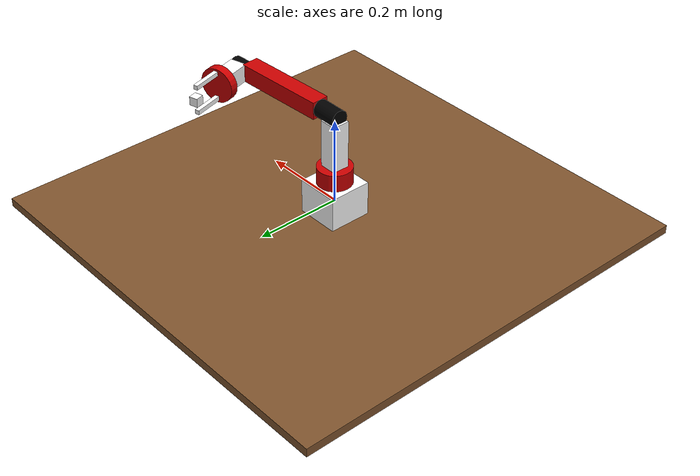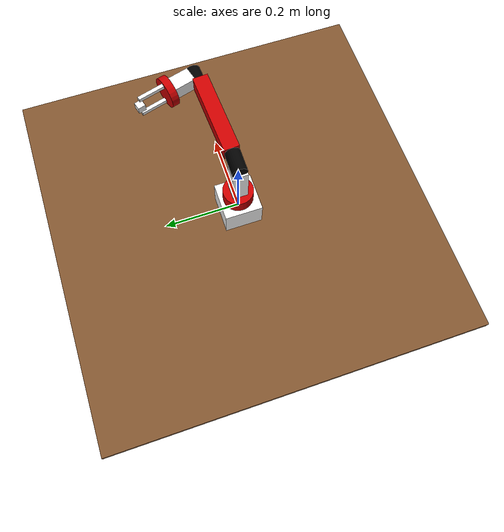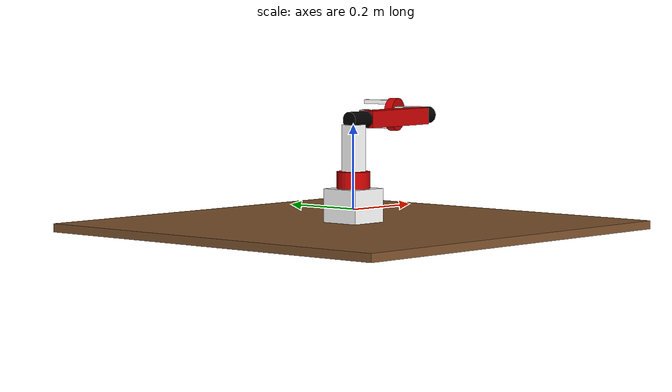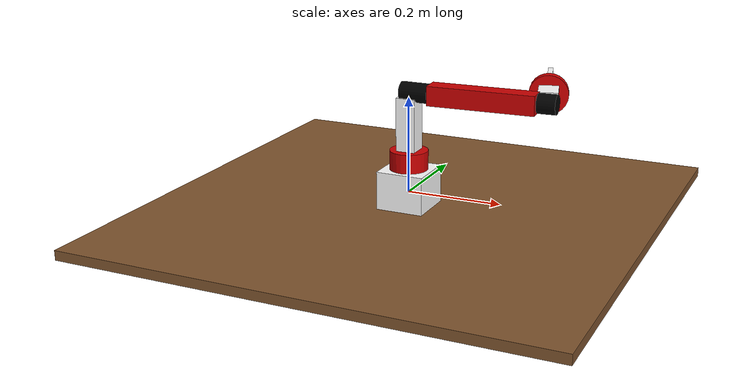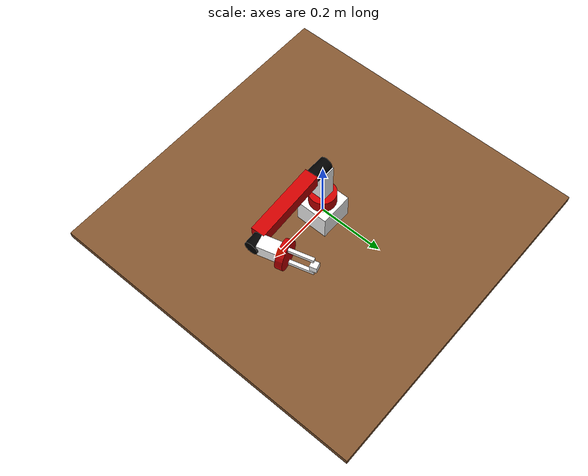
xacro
<?xml version="1.0"?>

<!--Defining Robot-->
<robot name = "seven_dof_arm" xmlns:xacro="http://www.ros.org/wiki/xacro">

	<!--Defining Constants-->
	<property name = "deg_to_rad" value = "0.01745329251994329577"/>
	<property name= "M_PI" value = "3.14159"/>
	<property name = "M_SCALE" value = "0.1 0.1 0.1"/>

	<!--Shoulder Pan Link Properties-->
	<property name = "shoulder_pan_width" value = "0.04"/>
	<property name = "shoulder_pan_length" value = "0.08"/>

	<!--Shoulder Pitch Link Properties-->
	<property name = "shoulder_pitch_length" value = "0.14"/>
	<property name = "shoulder_pitch_width" value = "0.04"/>
	<property name = "shoulder_pitch_height" value = "0.04"/>

	 <!--Elbow Roll Link Properties-->
	 <property name = "elbow_roll_width" value = "0.02"/>
	 <property name = "elbow_roll_length" value = "0.06"/>

	 <!--Elbow Pitch Link Properties-->
	 <property name = "elbow_pitch_length" value = "0.22"/>
	 <property name = "elbow_pitch_width" value = "0.04"/>
	 <property name = "elbow_pitch_height" value = "0.04"/>

	 <!--Wrist Roll Link Properties-->
	 <property name = "wrist_roll_width" value = "0.02"/>
	 <property name = "wrist_roll_length" value = "0.04"/>

	 <!--Wrist Pitch Link Properties-->
	 <property name = "wrist_pitch_length" value = "0.06"/>
	 <property name = "wrist_pitch_width" value = "0.04"/>
	 <property name = "wrist_pitch_height" value = "0.04"/>

	 <!--Gripper Roll Link Properties-->
	 <property name = "gripper_roll_width" value = "0.04"/>
	 <property name = "gripper_roll_length" value = "0.02"/>

	 <!--Left Gripper Properties-->
	 <property name = "left_gripper_length" value = "0.08"/>
	 <property name = "left_gripper_width" value = "0.01"/>
	 <property name = "left_gripper_height" value = "0.01"/>

	 <!--Right Gripper Properties-->
	 <property name = "right_gripper_length" value = "0.08"/>
	 <property name = "right_gripper_width" value = "0.01"/>
	 <property name = "right_gripper_height" value ="0.01"/>

	 <!--Right Gripper Grasping Property-->
	 <property name = "grasp_frame_length" value = "0.02"/>
	 <property name = "grasp_frame_width" value = "0.02"/>
	 <property name = "grasp_frame_height" value = "0.02"/>

	 <!--Defining Materials-->
	 <!--Black Material-->
	 <material name = "black">
	 	<color rgba = "0 0 0 1"/>
	 </material>

	 <!--White Material-->
	 <material name = "white">
	 	<color rgba = "1 1 1 1"/>
	 </material>

	 <!--Red Material-->
	 <material name = "red">
	 	<color rgba = "0.8 0 0 1"/>
	 </material>

	 <!--Defining Marcos for inertial matrix-->
	 <xacro:macro name = "inertial_matrix" params = "mass">
	 	<inertial>
	 		<mass value = "${mass}"/>
	 		<inertia ixx = "1.0" ixy = "0.0" ixz = "0.0" iyy = "1.0" iyz = "0.0" izz = "1.0"/>
	 	</inertial>
	 </xacro:macro>

	 <!--Defining Marcos for Transmission of Box-->
	 <xacro:macro name = "transmission_block" params = "joint_name">
	 	<transmission name = "t1">
	 		<!--Type of Transmission-->
	 		<type>transmission_interace/SimpleTransmission</type>
	 		<!--Joint for transmission-->
	 		<joint name = "${joint_name}">
	 			<hardwareInterface>PositionJointInterface</hardwareInterface>
	 		</joint>
	 		<!--Actuator-->
	 		<actuator name = "motor1">
	 			<hardwareInterface>PositionJointInterface</hardwareInterface>
	 			<mechanicalReduction>1</mechanicalReduction>
	 		</actuator>
	 	</transmission>
	 </xacro:macro>

	 <!--/////////////////////////////////////////////////////__Bottom Fixed Link__////////////////////////////////////////////////////////////////////-->

	 <link name = "bottom_link">
	 	<!--Visualisation of robot-->
	 	<visual>
	 		<!--Origin-->
	 		<origin xyz = "0 0 -0.04" rpy = "0 0 0"/>
	 		<!--Geometry-->
	 		<geometry>
	 			<!--Box-->
	 			<box size = "1 1 0.02"/>
	 		</geometry>
	 		<!--Material-->
	 		<material name = "brown"/>
	 	</visual>
	 	<!--Collision-->
	 	<collision>
	 		<!--Origin-->
	 		<origin xyz = "0 0 -0.04" rpy = "0 0 0"/>
	 		<!--Geometry-->
	 		<geometry>
	 			<box size = "1 1 0.02"/>
	 		</geometry>
	 	</collision>
	 </link>

	 <!--Adding Gazebo reference-->
	 <gazebo reference = "bottom_link">
	 	<material>Gazebo/White</material>
	 </gazebo>

	 <joint name = "bottom_joint" type = "fixed">
	 	<!--Origin-->
	 	<origin xyz = "0 0 0" rpy = "0 0 0"/>
	 	<!--Parent Link-->
	 	<parent link = "base_link"/>
	 	<!--Child Link-->
	 	<child link = "bottom_link"/>
	 </joint>

	 <!--/////////////////////////////////////////////////////__Base Link__////////////////////////////////////////////////////////////////////-->

	<link name = "base_link">
		<!--Visualization-->
		<visual>
			<origin xyz = "0 0 0" rpy = "${M_PI/2} 0 0"/> <!--Rotating pi2-->
			<geometry>
				<box size = "0.1 0.1 0.1"/>
			</geometry>
			<material name = "white"/>
		</visual>
		<!--Collision-->
		<collision>
			<origin xyz = "0 0 0" rpy = "${M_PI/2} 0 0"/> <!--Rotating pi2-->
			<geometry>
				<box size = "0.1 0.1 0.1"/>
			</geometry>
		</collision>
		<!--Physical Properties/Inertia-->
		<xacro:inertial_matrix mass = "1"/>
	</link>

	<!--Gazebo Reference-->
	<gazebo reference = "base_link">
		<material>Gazebo/White</material>
	</gazebo>

	<!--Joint-->
	<joint name = "shoulder_pan_joint" type = "revolute">
		<origin xyz = "0 0 0.05" rpy = "0 ${M_PI/2} ${M_PI*0}"/>
		<axis xyz = "-1 0 0"/>
		<parent link = "base_link"/>
		<child link = "shoulder_pan_link"/>
		<limit effort = "300" velocity = "1" lower = "${deg_to_rad*-150}" upper = "${deg_to_rad*114}"/>
		<dynamics damping = "50" friction = "1"/>
	</joint>

	 <!--/////////////////////////////////////////////////////__Shoulder Pan Link__////////////////////////////////////////////////////////////////////-->

	<link name = "shoulder_pan_link">
		<visual>
			<origin xyz = "0 0 0" rpy = "0 ${M_PI/2} 0"/>
			<geometry>
				<cylinder length = "${shoulder_pan_length}" radius = "${shoulder_pan_width}"/>
			</geometry>
			<material name = "red"/>
		</visual>
		<collision>
			<origin xyz = "0 0 0" rpy = "0 ${M_PI/2} 0"/>
			<geometry>
				<cylinder length = "${shoulder_pan_length}" radius = "${shoulder_pan_width}"/>
			</geometry>
		</collision>
		<xacro:inertial_matrix mass = "1"/>
	</link>

	<!--Gazebo Reference-->
	<gazebo reference = "shoulder_pan_link">
		<material>Gazebo/Red</material>
	</gazebo>

	<!--Joint-->
	<joint name = "shoulder_pitch_joint" type = "revolute">
		<origin xyz = "-0.041 0.0021 0" rpy = "${-M_PI/2} 0 ${M_PI/2}"/>
		<axis xyz = "1 0 0"/>
		<parent link = "shoulder_pan_link"/>
		<child link = "shoulder_pitch_link"/>
		<limit effort = "300" velocity = "1" lower = "${deg_to_rad*-67}" upper = "${deg_to_rad*109}"/>
		<dynamics dmaping = "50" friction = "1"/>
	</joint>

	<!--/////////////////////////////////////////////////////__Shoulder Pitch Link__////////////////////////////////////////////////////////////////////-->

	<link name = "shoulder_pitch_link">
		<visual>
			<origin xyz = "-0.002 0 0.04" rpy = "0 ${M_PI/2} 0"/>
			<geometry>
				<box size = "${shoulder_pitch_length} ${shoulder_pitch_width} ${shoulder_pitch_height}"/>
			</geometry>
			<material name = "white"/>
		</visual>
		<collision>
			<origin xyz = "-0.002 0 0.04" rpy = "0 ${M_PI/2} 0"/>
			<geometry>
				<box size = "${shoulder_pitch_length} ${shoulder_pitch_width} ${shoulder_pitch_height}"/>
			</geometry>
		</collision>
		<xacro:inertial_matrix mass = "1"/>
	</link>

	<!--Gazebo Reference-->
	<gazebo reference = "shoulder_pitch_link">
		<material>Gazebo/White</material>
	</gazebo>

	<!--Joint-->
	<joint name = "elbow_roll_joint" type = "revolute">
		<origin xyz = "-0.002 0 0.1206" rpy = "${M_PI} 0 ${M_PI/2}"/>
		<axis xyz = "-1 0 0"/>
		<parent link = "shoulder_pitch_link"/>
		<child link = "elbow_roll_link"/>
		<limit effort = "300" velocity = "1" lower = "${deg_to_rad*-150}" upper = "${deg_to_rad*41}"/>
		<dynamics dmaping = "50" friction = "1"/>
	</joint>

	<!--/////////////////////////////////////////////////////__Elbow Roll Link__////////////////////////////////////////////////////////////////////-->

	<link name = "elbow_roll_link">
		<visual>
			<origin xyz = "-0.015 0 -0" rpy = "0 ${M_PI/2} 0"/>
			<geometry>
				<cylinder length = "${elbow_roll_length}" radius = "${elbow_roll_width}"/>
			</geometry>
			<material name = "black"/>
		</visual>
		<collision>
			<origin xyz = "-0.015 0 -0" rpy = "0 ${M_PI/2} 0"/>
			<geometry>
				<cylinder length = "${elbow_roll_length}" radius = "${elbow_roll_width}"/>
			</geometry>
		</collision>
		<xacro:inertial_matrix mass = "1"/>
	</link>

	<!--Gazebo Reference-->
	<gazebo reference = "elbow_roll_link">
		<material>Gazebo/Black</material>
	</gazebo>

	<!--Joint-->
	<joint name = "elbow_pitch_joint" type = "revolute">
		<origin xyz = "-0.035 0 0" rpy = "0.055 ${M_PI/2} 0"/>
		<axis xyz = "1 0 0"/>
		<parent link = "elbow_roll_link"/>
		<child link = "elbow_pitch_link"/>
		<limit effort = "300" velocity = "1" lower = "${deg_to_rad*-92}" upper = "${deg_to_rad*110}"/>
		<dynamics dmaping = "50" friction = "1"/>
	</joint>

	<!--/////////////////////////////////////////////////////__Elbow Pitch Link__////////////////////////////////////////////////////////////////////-->

	<link name = "elbow_pitch_link">
		<visual>
			<origin xyz = "0 0 -0.12" rpy = "0 ${M_PI/2} 0"/>
			<geometry>
				<box size = "${elbow_pitch_length} ${elbow_pitch_width} ${elbow_pitch_height}"/>
			</geometry>
			<material name = "red"/>
		</visual>
		<collision>
			<origin xyz = "0 0 -0.12" rpy = "0 ${M_PI/2} 0"/>
			<geometry>
				<box size = "${elbow_pitch_length} ${elbow_pitch_width} ${elbow_pitch_height}"/>
			</geometry>
		</collision>
		<xacro:inertial_matrix mass = "1"/>
	</link>

	<!--Gazebo Reference-->
	<gazebo reference = "elbow_pitch_link">
		<material>Gazebo/Red</material>
	</gazebo>

	<!--Joint-->
	<joint name = "wrist_roll_joint" type = "revolute">
		<origin xyz = "0 0.0081 -0.248" rpy = "0 ${M_PI/2} ${M_PI}"/>
		<axis xyz = "1 0 0"/>
		<parent link = "elbow_pitch_link"/>
		<child link = "wrist_roll_link"/>
		<limit effort = "300" velocity = "1" lower = "${deg_to_rad*-150}" upper = "${deg_to_rad*150}"/>
		<dynamics dmaping = "50" friction = "1"/>
	</joint>

	<!--/////////////////////////////////////////////////////__Wrist Roll Link__////////////////////////////////////////////////////////////////////-->

	<link name = "wrist_roll_link">
		<visual>
			<origin xyz = "0 0 0" rpy = "0 ${M_PI/2} 0"/>
			<geometry>
				<cylinder length = "${wrist_roll_length}" radius = "${wrist_roll_width}"/>
			</geometry>
			<material name = "black"/>
		</visual>
		<collision>
			<origin xyz = "0 0 0" rpy = "0 ${M_PI/2} 0"/>
			<geometry>
				<cylinder length = "${wrist_roll_length}" radius = "${wrist_roll_width}"/>
			</geometry>
		</collision>
		<xacro:inertial_matrix mass = "1"/>
	</link>

	<!--Gazebo Reference-->
	<gazebo reference = "wrist_roll_link">
		<material>Gazebo/Black</material>
	</gazebo>

	<!--Joint-->
	<joint name = "wrist_pitch_joint" type = "revolute">
		<origin xyz = "0 0 0.0001" rpy = "0 ${M_PI/2} 0"/>
		<axis xyz = "1 0 0"/>
		<parent link = "wrist_roll_link"/>
		<child link = "wrist_pitch_link"/>
		<limit effort = "300" velocity = "1" lower = "${deg_to_rad*92}" upper = "${deg_to_rad*113}"/>
		<dynamics dmaping = "50" friction = "1"/>
	</joint>

	<!--/////////////////////////////////////////////////////__Wrist Pitch Link__////////////////////////////////////////////////////////////////////-->

	<link name = "wrist_pitch_link">
		<visual>
			<origin xyz = "0 0 0.04" rpy = "0 ${M_PI/2} 0"/>
			<geometry>
				<box size = "${wrist_pitch_length} ${wrist_pitch_width} ${wrist_pitch_height}"/>
			</geometry>
			<material name = "white"/>
		</visual>
		<collision>
			<origin xyz = "0 0 0.04" rpy = "0 ${M_PI/2} 0"/>
			<geometry>
				<box size = "${wrist_pitch_length} ${wrist_pitch_width} ${wrist_pitch_height}"/>
			</geometry>
		</collision>
		<xacro:inertial_matrix mass = "1"/>
	</link>

	<!--Gazebo Reference-->
	<gazebo reference = "wrist_pitch_link">
		<material>Gazebo/White</material>
	</gazebo>

	<!--Joint-->
	<joint name = "gripper_roll_joint" type = "revolute">
		<origin xyz = "0 0 0.08" rpy = "${1.5*M_PI} ${-0.5*M_PI} 0"/>
		<axis xyz = "1 0 0"/>
		<parent link = "wrist_pitch_link"/>
		<child link = "gripper_roll_link"/>
		<limit effort = "300" velocity = "1" lower = "${deg_to_rad*-150}" upper = "${deg_to_rad*150}"/>
		<dynamics dmaping = "50" friction = "1"/>
	</joint>

	<!--/////////////////////////////////////////////////////__Gripper Roll Link__////////////////////////////////////////////////////////////////////-->

	<link name = "gripper_roll_link">
		<visual>
			<origin xyz = "0 0 0" rpy = "0 ${M_PI/2} 0"/>
			<geometry>
				<cylinder length = "${gripper_roll_length}" radius = "${gripper_roll_width}"/>
			</geometry>
			<material name = "red"/>
		</visual>
		<collision>
			<origin xyz = "0 0 0" rpy = "0 ${M_PI/2} 0"/>
			<geometry>
				<cylinder length = "${gripper_roll_length}" radius = "${gripper_roll_width}"/>
			</geometry>
		</collision>
		<xacro:inertial_matrix mass = "1"/>
	</link>

	<!--Gazebo Reference-->
	<gazebo reference = "gripper_roll_link">
		<material>Gazebo/Red</material>
	</gazebo>

	<!--Joint-->
	<joint name = "finger_joint1" type = "prismatic">
		<origin xyz = "0 0 0"/>
		<axis xyz = "0 1 0"/>
		<parent link = "gripper_roll_link"/>
		<child link = "gripper_final_link1"/>
		<limit effort = "100" velocity = "1" lower = "0" upper = "0.03"/>
		<!--Safety Controller-->
		<safety_controller k_position = "20" k_velocity = "20" soft_lower_limit = "${-0.15}" soft_upper_limit = "${0.0}"/>
		<dynamics dmaping = "50" friction = "1"/>
	</joint>

	<!--/////////////////////////////////////////////////////__Left Gripper AFT Link__////////////////////////////////////////////////////////////////////-->

	<link name = "gripper_final_link1">
		<visual>
			<origin xyz = "0.04 -0.03 0"/>
			<geometry>
				<box size = "${left_gripper_length} ${left_gripper_width} ${left_gripper_height}"/>
			</geometry>
			<material name = "white"/>
		</visual>
		<xacro:inertial_matrix mass = "1"/>
	</link>

	<!--Gazebo Reference-->
	<gazebo reference = "l_gripper_aft_link">
		<material>Gazebo/White</material>
	</gazebo>

	<!--Joint-->
	<joint name = "finger_joint2" type = "prismatic">
		<origin xyz = "0 0 0"/>
		<axis xyz = "0 1 0"/>
		<parent link = "gripper_roll_link"/>
		<child link = "gripper_final_link2"/>
		<limit effort = "1" velocity = "1" lower = "-0.03" upper = "0"/>
		<dynamics dmaping = "50" friction = "1"/>
	</joint>

	<!--/////////////////////////////////////////////////////__Right Gripper AFT Link__////////////////////////////////////////////////////////////////////-->

	<link name = "gripper_final_link2">
		<visual>
			<origin xyz = "0.04 0.03 0"/>
			<geometry>
				<box size = "${right_gripper_length} ${right_gripper_width} ${right_gripper_height}"/>
			</geometry>
			<material name = "white"/>
		</visual>
		<xacro:inertial_matrix mass = "1"/>
	</link>

	<!--Gazebo Reference-->
	<gazebo reference = "r_gripper_aft_link">
		<material>Gazebo/White</material>
	</gazebo>

	<!--/////////////////////////////////////////////////////__Grasping Frame__////////////////////////////////////////////////////////////////////-->

	<link name = "grasping_frame">
		<inertial>
			<origin xyz = "0 0 0" rpy = "0 0 0"/>
			<mass value = "0.0001"/>
			<cuboid_inertia mass = "0.0001" x = "0.0001" y = "0.0001" z = "0.0001"/>
			<inertia ixx = "1.0" ixy = "0.0" ixz = "0.0" iyy ="100.0" iyz = "0.0" izz = "0.0"/>
		</inertial>
		<visual>
			<origin xyz = "0 0 0"/>
			<geometry>
				<box size = "${grasp_frame_length} ${grasp_frame_width} ${grasp_frame_height}"/>
			</geometry>
			<material name = "white"/>
		</visual>
		<xacro:inertial_matrix mass = "1"/>
	</link>

	<!--Joint-->
	<joint name = "grasping_frame_joint" type = "fixed">
		<origin xyz = "0.08 0 0" rpy = "0 0 0"/>
		<parent link = "gripper_roll_link"/>
		<child link = "grasping_frame"/>
	</joint>

	<!--/////////////////////////////////////////////////////__Transmission for ROS Control__////////////////////////////////////////////////////////////////////-->
	<xacro:transmission_block joint_name = "shoulder_pan_joint"/>
	<xacro:transmission_block joint_name = "shoulder_pitch_joint"/>
	<xacro:transmission_block joint_name = "elbow_roll_joint"/>
	<xacro:transmission_block joint_name = "elbow_pitch_joint"/>
	<xacro:transmission_block joint_name = "wrist_roll_joint"/>
	<xacro:transmission_block joint_name = "wrist_pitch_joint"/>
	<xacro:transmission_block joint_name = "gripper_roll_joint"/>
	<xacro:transmission_block joint_name = "finger_joint1"/>
	<xacro:transmission_block joint_name = "finger_joint2"/>

  	<!-- ros_control plugin -->
	<gazebo>
		<plugin name="gazebo_ros_control" filename="libgazebo_ros_control.so">
			<robotNamespace>/seven_dof_arm</robotNamespace>
		</plugin>
	</gazebo>

</robot>
